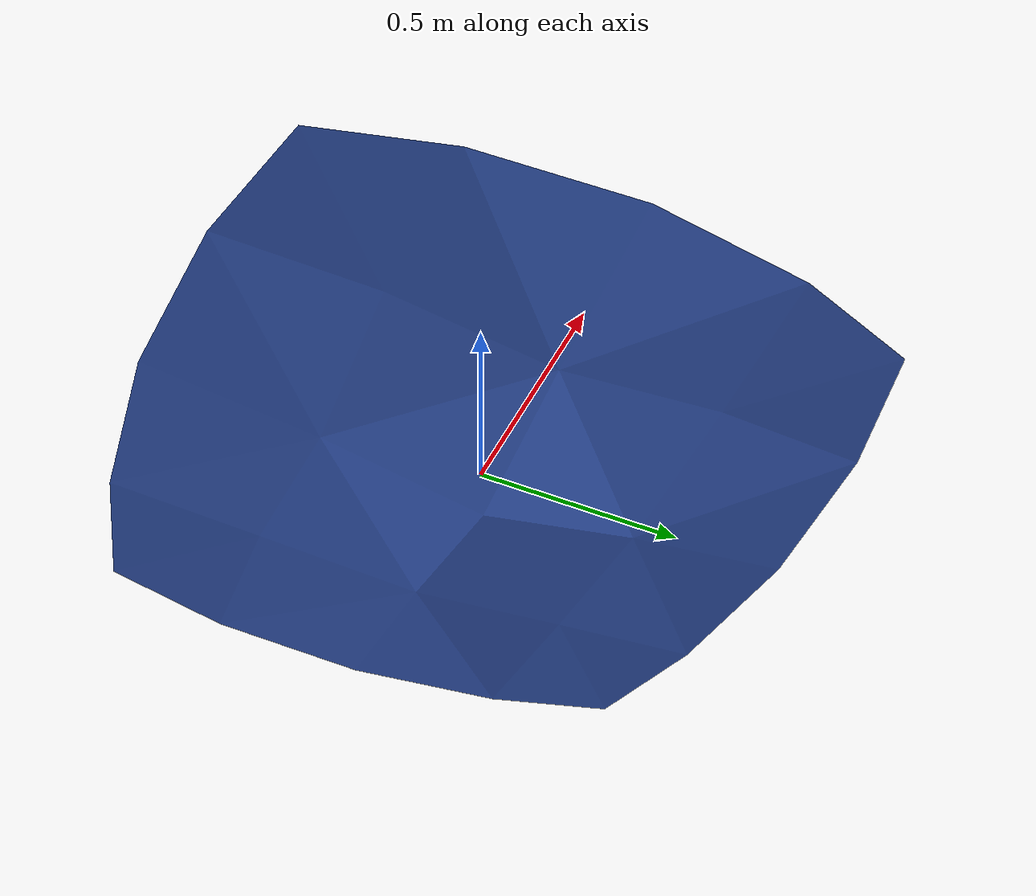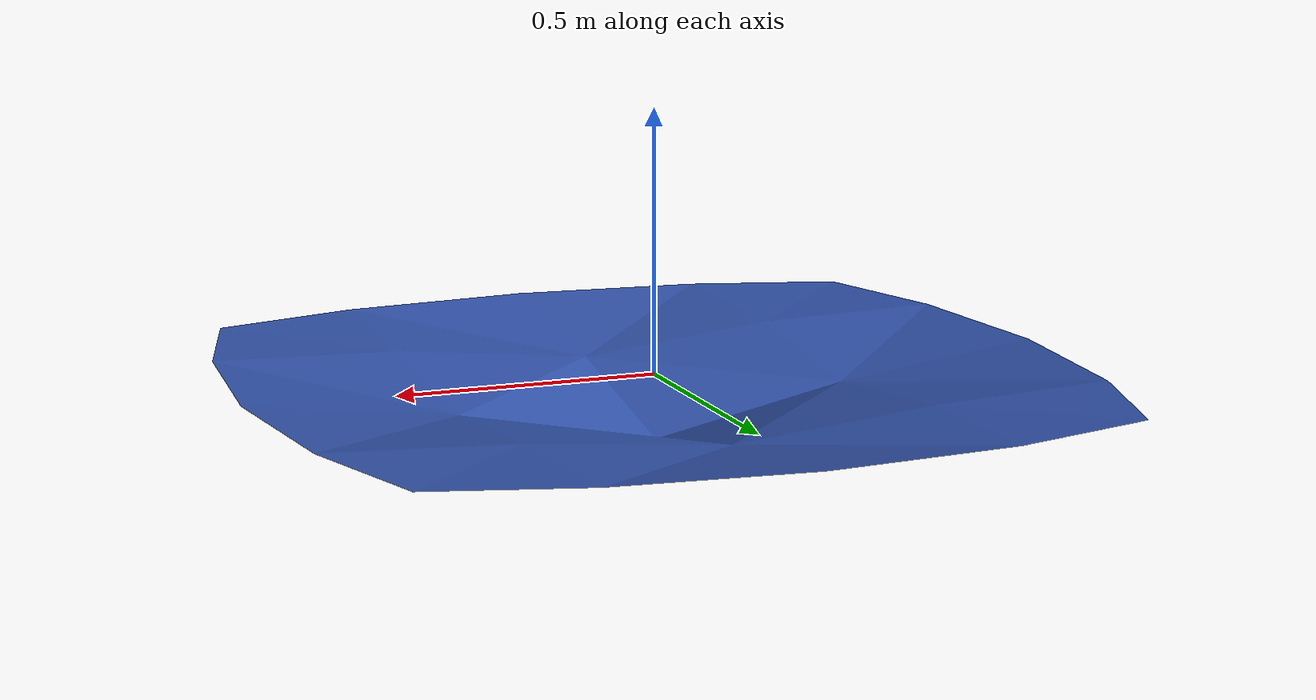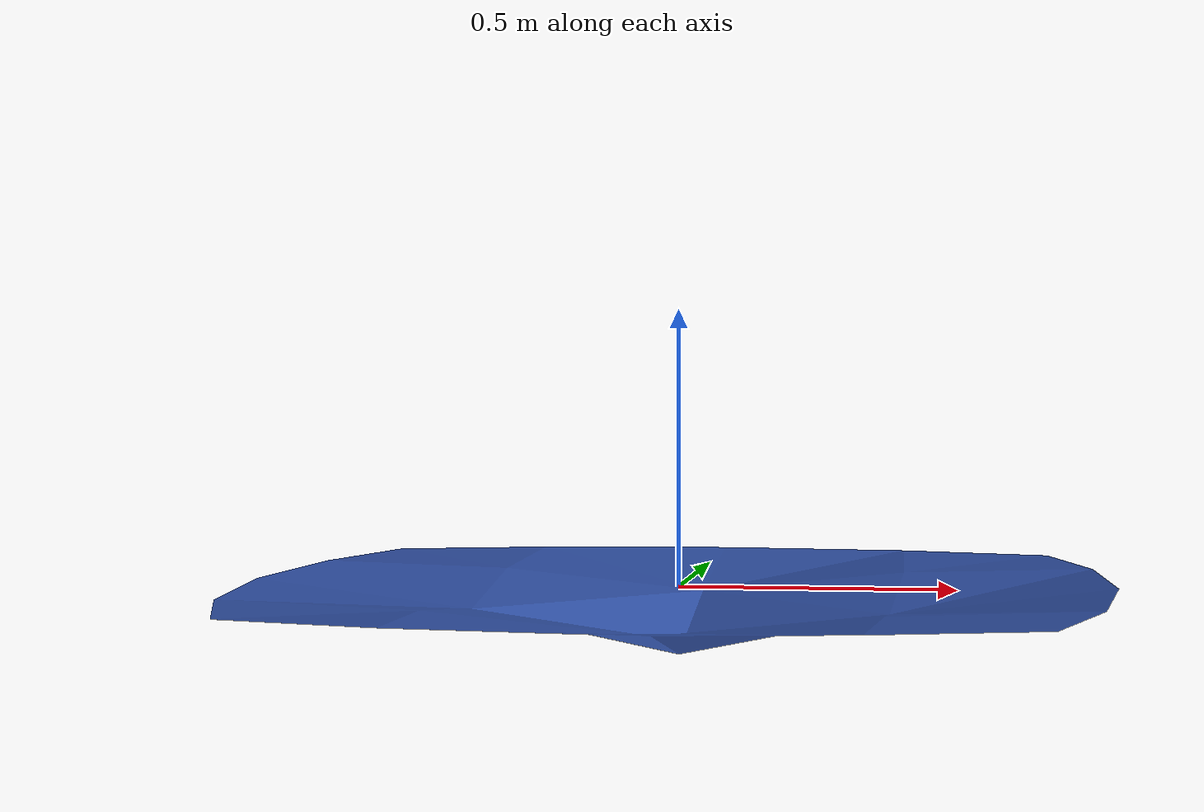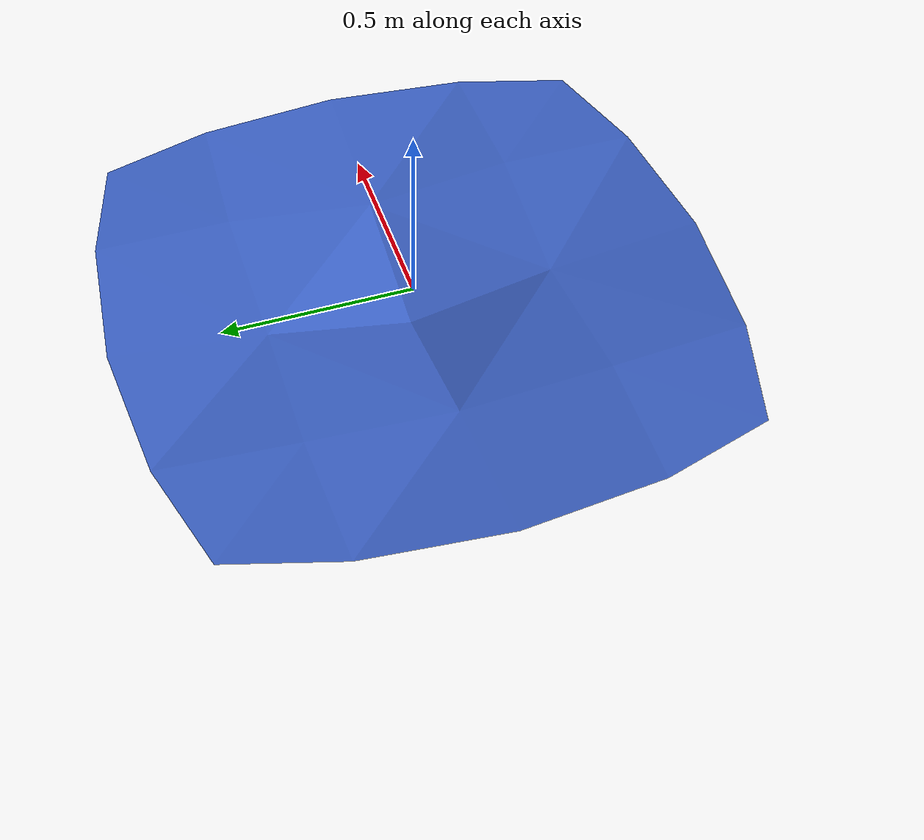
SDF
<?xml version="1.0" ?>
<sdf version="1.6">
  <model name="puddle_small">
    <static>true</static>
    <link name="link">
      <visual name="visual">
        <geometry>
          <mesh>
            <uri>model://puddle_small//puddle_small.dae</uri>
          </mesh>
        </geometry>
      </visual>
    </link>
  </model>
</sdf>
